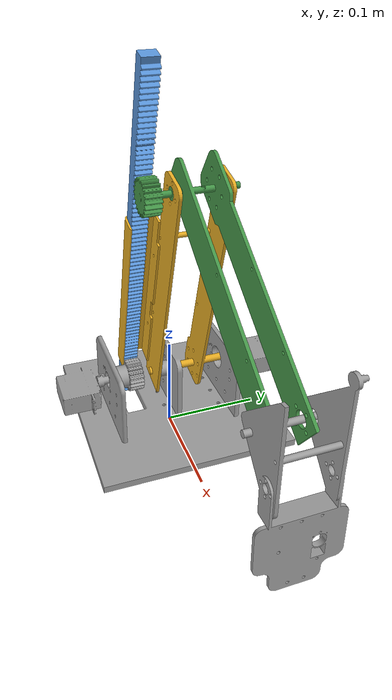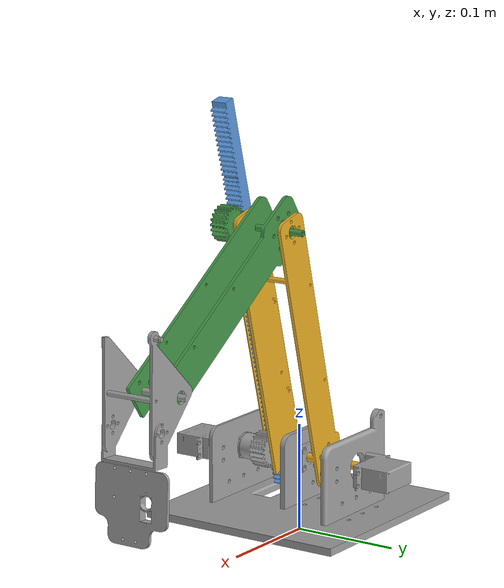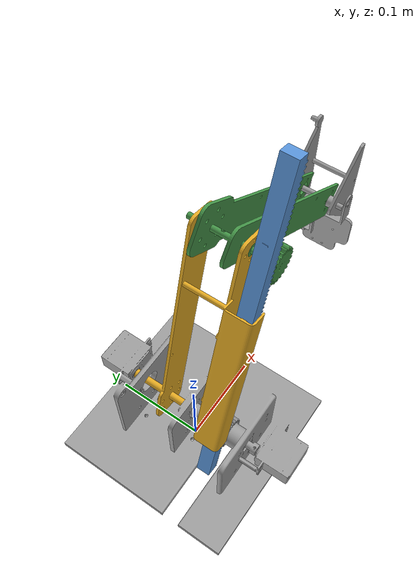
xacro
<?xml version="1.0" ?>
<robot name="test" xmlns:xacro="http://www.ros.org/wiki/xacro">

<xacro:include filename="$(find test_description)/urdf/materials.xacro" />
<xacro:include filename="$(find test_description)/urdf/test.trans" />
<xacro:include filename="$(find test_description)/urdf/test.gazebo" />

<link name="world"/>
<link name="base_link">
  <inertial>
    <origin xyz="0.002627025718145887 0.0018168583679358929 0.01943654315821824" rpy="0 0 0"/>
    <mass value="0.3358994137046097"/>
    <inertia ixx="0.015716" iyy="0.00938" izz="0.021587" ixy="0.000314" iyz="8.1e-05" ixz="7.2e-05"/>
  </inertial>
  <visual>
    <origin xyz="0 0 0" rpy="0 0 0"/>
    <geometry>
      <mesh filename="package://test_description/meshes/base_link.stl" scale="0.001 0.001 0.001"/>
    </geometry>
    <material name="opaque160160160"/>
  </visual>
  <collision>
    <origin xyz="0 0 0" rpy="0 0 0"/>
    <geometry>
      <mesh filename="package://test_description/meshes/base_link.stl" scale="0.001 0.001 0.001"/>
    </geometry>
  </collision>
</link>

<link name="Upper_Arm_v1_1">
  <inertial>
    <origin xyz="0.06084260066038855 0.018073059422100655 -0.04092014077337344" rpy="0 0 0"/>
    <mass value="0.01737351952462784"/>
    <inertia ixx="0.000377" iyy="0.000923" izz="0.000706" ixy="-7.8e-05" iyz="5.3e-05" ixz="0.000412"/>
  </inertial>
  <visual>
    <origin xyz="-0.057276 0.01888 -0.272108" rpy="0 0 0"/>
    <geometry>
      <mesh filename="package://test_description/meshes/Upper_Arm_v1_1.stl" scale="0.001 0.001 0.001"/>
    </geometry>
    <material name="opaque6815072"/>
  </visual>
  <collision>
    <origin xyz="-0.057276 0.01888 -0.272108" rpy="0 0 0"/>
    <geometry>
      <mesh filename="package://test_description/meshes/Upper_Arm_v1_1.stl" scale="0.001 0.001 0.001"/>
    </geometry>
  </collision>
</link>

<link name="Gripper_holder_1">
  <inertial>
    <origin xyz="0.02614783175447949 0.016741346037815158 -0.032533908946886514" rpy="0 0 0"/>
    <mass value="0.0031885132878487776"/>
    <inertia ixx="0.000835" iyy="0.000735" izz="0.000218" ixy="-5e-06" iyz="9e-06" ixz="0.000104"/>
  </inertial>
  <visual>
    <origin xyz="-0.225725 0.008528 -0.160724" rpy="0 0 0"/>
    <geometry>
      <mesh filename="package://test_description/meshes/Gripper_holder_1.stl" scale="0.001 0.001 0.001"/>
    </geometry>
    <material name="opaque160160160"/>
  </visual>
  <collision>
    <origin xyz="-0.225725 0.008528 -0.160724" rpy="0 0 0"/>
    <geometry>
      <mesh filename="package://test_description/meshes/Gripper_holder_1.stl" scale="0.001 0.001 0.001"/>
    </geometry>
  </collision>
</link>

<link name="Lower_Arm_v1_1">
  <inertial>
    <origin xyz="0.02041623168935574 0.013152269530085525 0.09946711451008255" rpy="0 0 0"/>
    <mass value="0.06471244693244322"/>
    <inertia ixx="0.003628" iyy="0.003458" izz="0.000882" ixy="-0.000108" iyz="8.7e-05" ixz="-0.000812"/>
  </inertial>
  <visual>
    <origin xyz="0.002712 0.016362 -0.049536" rpy="0 0 0"/>
    <geometry>
      <mesh filename="package://test_description/meshes/Lower_Arm_v1_1.stl" scale="0.001 0.001 0.001"/>
    </geometry>
    <material name="opaque23217335"/>
  </visual>
  <collision>
    <origin xyz="0.002712 0.016362 -0.049536" rpy="0 0 0"/>
    <geometry>
      <mesh filename="package://test_description/meshes/Lower_Arm_v1_1.stl" scale="0.001 0.001 0.001"/>
    </geometry>
  </collision>
</link>

<link name="Geared_shaft_1">
  <inertial>
    <origin xyz="-0.00011583643525059925 0.014441824168826438 8.071508410950612e-08" rpy="0 0 0"/>
    <mass value="0.13951903287709957"/>
    <inertia ixx="2.1e-05" iyy="1.3e-05" izz="2.1e-05" ixy="0.0" iyz="-0.0" ixz="-0.0"/>
  </inertial>
  <visual>
    <origin xyz="0.002355 0.060854 -0.049536" rpy="0 0 0"/>
    <geometry>
      <mesh filename="package://test_description/meshes/Geared_shaft_1.stl" scale="0.001 0.001 0.001"/>
    </geometry>
    <material name="steel_satin"/>
  </visual>
  <collision>
    <origin xyz="0.002355 0.060854 -0.049536" rpy="0 0 0"/>
    <geometry>
      <mesh filename="package://test_description/meshes/Geared_shaft_1.stl" scale="0.001 0.001 0.001"/>
    </geometry>
  </collision>
</link>

<link name="Rack_1">
  <inertial>
    <origin xyz="-0.0037798777765754472 -3.0809250456266535e-05 -0.04188485878700296" rpy="0 0 0"/>
    <mass value="0.6058243930815651"/>
    <inertia ixx="0.006966" iyy="0.007468" izz="0.000524" ixy="-4e-06" iyz="-1.5e-05" ixz="-0.00187"/>
  </inertial>
  <visual>
    <origin xyz="-0.018716 0.038938 -0.23898" rpy="0 0 0"/>
    <geometry>
      <mesh filename="package://test_description/meshes/Rack_1.stl" scale="0.001 0.001 0.001"/>
    </geometry>
    <material name="opaque89149218"/>
  </visual>
  <collision>
    <origin xyz="-0.018716 0.038938 -0.23898" rpy="0 0 0"/>
    <geometry>
      <mesh filename="package://test_description/meshes/Rack_1.stl" scale="0.001 0.001 0.001"/>
    </geometry>
  </collision>
</link>

<joint name="world_to_base_link=" type="fixed">
     <parent link="world"/>
     <child link="base_link"/>
     <origin xyz="0 0 0.02" rpy="0 0 0"/>
</joint>

<joint name="Rev4" type="continuous">
  <origin xyz="0.059988 -0.002518 0.222572" rpy="0 0 0"/>
  <parent link="Lower_Arm_v1_1"/>
  <child link="Upper_Arm_v1_1"/>
  <axis xyz="0.008026 -0.999968 -0.0"/>
</joint>

<joint name="Rev5" type="continuous">
  <origin xyz="0.168449 0.010352 -0.111384" rpy="0 0 0"/>
  <parent link="Upper_Arm_v1_1"/>
  <child link="Gripper_holder_1"/>
  <axis xyz="-0.008026 0.999968 0.0"/>
</joint>

<joint name="Rev6" type="continuous">
  <origin xyz="-0.002712 -0.016362 0.049536" rpy="0 0 0"/>
  <parent link="base_link"/>
  <child link="Lower_Arm_v1_1"/>
  <axis xyz="-0.008026 0.999968 0.0"/>
</joint>

<joint name="Rev14" type="continuous">
  <origin xyz="-0.002355 -0.060854 0.049536" rpy="0 0 0"/>
  <parent link="base_link"/>
  <child link="Geared_shaft_1"/>
  <axis xyz="0.008026 -0.999968 -0.0"/>
</joint>

<joint name="Slider24" type="prismatic">
  <origin xyz="0.021428 -0.022576 0.189444" rpy="0 0 0"/>
  <parent link="Lower_Arm_v1_1"/>
  <child link="Rack_1"/>
  <axis xyz="-0.260184 -0.002088 -0.965557"/>
  <limit upper="100" lower="-100" effort="100000000000" velocity="100000"/>
</joint>

</robot>

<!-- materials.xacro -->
<robot name="test" xmlns:xacro="http://www.ros.org/wiki/xacro" >

<material name="silver_default">
  <color rgba="0.700 0.700 0.700 1.000"/>
</material>
<material name="opaque160160160">
  <color rgba="0.6274509803921569 0.6274509803921569 0.6274509803921569 1.0"/>
</material>
<material name="opaque23217335">
  <color rgba="0.9098039215686274 0.6784313725490196 0.13725490196078433 1.0"/>
</material>
<material name="opaque6815072">
  <color rgba="0.26666666666666666 0.5882352941176471 0.2823529411764706 1.0"/>
</material>
<material name="opaque251250245">
  <color rgba="0.984313725490196 0.9803921568627451 0.9607843137254902 1.0"/>
</material>
<material name="opaque89149218">
  <color rgba="0.34901960784313724 0.5843137254901961 0.8549019607843137 1.0"/>
</material>
<material name="steel_satin">
  <color rgba="0.6274509803921569 0.6274509803921569 0.6274509803921569 1.0"/>
</material>

</robot>
